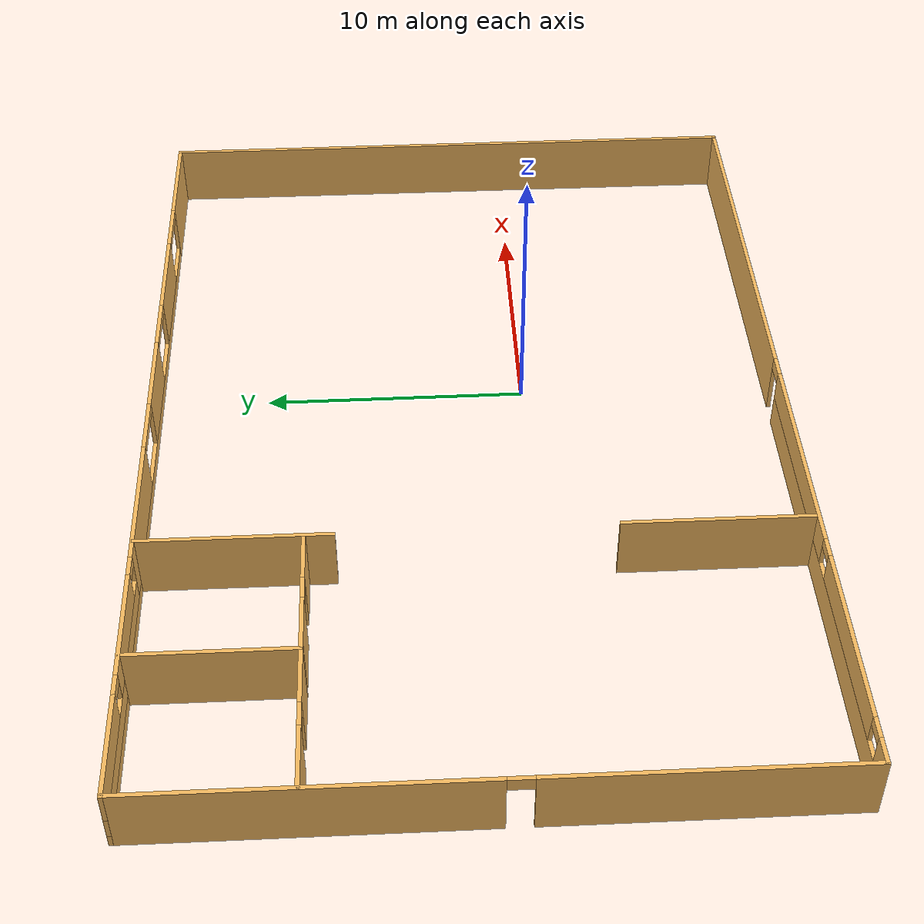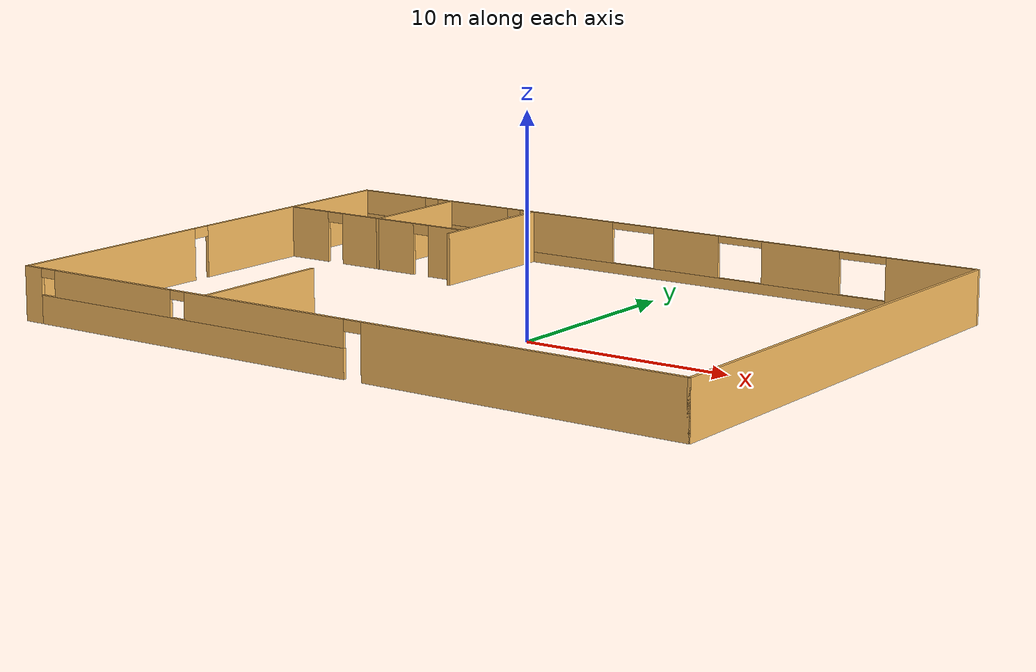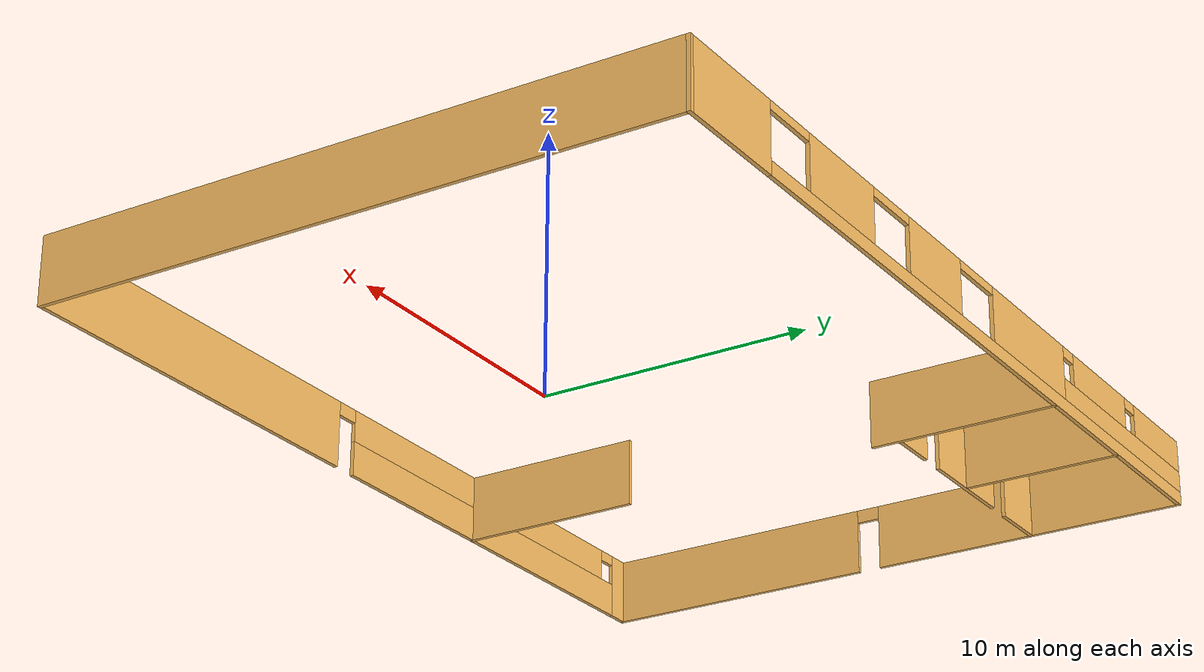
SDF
<?xml version='1.0'?>
<sdf version='1.6'>
  <model name='AdrianTemple'>
    <pose frame=''>-3.03305 2.27028 0 0 -0 0</pose>
    <link name='Wall_10'>
      <pose frame=''>-0 -11.925 0 0 -0 0</pose>
      <visual name='Wall_10_Visual_0'>
        <pose frame=''>-16.746 0 1.25 0 -0 0</pose>
        <geometry>
          <box>
            <size>1.00805 0.15 2.5</size>
          </box>
        </geometry>
        <material>
          <script>
            <uri>file://media/materials/scripts/gazebo.material</uri>
            <name>Gazebo/Grey</name>
          </script>
          <ambient>0.952941 0.721569 0.368627 1</ambient>
        </material>
        <meta>
          <layer>0</layer>
        </meta>
      </visual>
      <collision name='Wall_10_Collision_0'>
        <geometry>
          <box>
            <size>1.00805 0.15 2.5</size>
          </box>
        </geometry>
        <pose frame=''>-16.746 0 1.25 0 -0 0</pose>
      </collision>
      <visual name='Wall_10_Visual_1'>
        <pose frame=''>9.5202 0 1.25 0 -0 0</pose>
        <geometry>
          <box>
            <size>15.4596 0.15 2.5</size>
          </box>
        </geometry>
        <material>
          <script>
            <uri>file://media/materials/scripts/gazebo.material</uri>
            <name>Gazebo/Grey</name>
          </script>
          <ambient>0.952941 0.721569 0.368627 1</ambient>
        </material>
        <meta>
          <layer>0</layer>
        </meta>
      </visual>
      <collision name='Wall_10_Collision_1'>
        <geometry>
          <box>
            <size>15.4596 0.15 2.5</size>
          </box>
        </geometry>
        <pose frame=''>9.5202 0 1.25 0 -0 0</pose>
      </collision>
      <visual name='Wall_10_Visual_2'>
        <pose frame=''>-7.67577 0 0.65 0 -0 0</pose>
        <geometry>
          <box>
            <size>17.1324 0.15 1.3</size>
          </box>
        </geometry>
        <material>
          <script>
            <uri>file://media/materials/scripts/gazebo.material</uri>
            <name>Gazebo/Grey</name>
          </script>
          <ambient>0.952941 0.721569 0.368627 1</ambient>
        </material>
        <meta>
          <layer>0</layer>
        </meta>
      </visual>
      <collision name='Wall_10_Collision_2'>
        <geometry>
          <box>
            <size>17.1324 0.15 1.3</size>
          </box>
        </geometry>
        <pose frame=''>-7.67577 0 0.65 0 -0 0</pose>
      </collision>
      <visual name='Wall_10_Visual_3'>
        <pose frame=''>-12.0029 0 1.9 0 -0 0</pose>
        <geometry>
          <box>
            <size>6.87815 0.15 1.2</size>
          </box>
        </geometry>
        <material>
          <script>
            <uri>file://media/materials/scripts/gazebo.material</uri>
            <name>Gazebo/Grey</name>
          </script>
          <ambient>0.952941 0.721569 0.368627 1</ambient>
        </material>
        <meta>
          <layer>0</layer>
        </meta>
      </visual>
      <collision name='Wall_10_Collision_3'>
        <geometry>
          <box>
            <size>6.87815 0.15 1.2</size>
          </box>
        </geometry>
        <pose frame=''>-12.0029 0 1.9 0 -0 0</pose>
      </collision>
      <visual name='Wall_10_Visual_4'>
        <pose frame=''>-3.43669 0 1.9 0 -0 0</pose>
        <geometry>
          <box>
            <size>8.65421 0.15 1.2</size>
          </box>
        </geometry>
        <material>
          <script>
            <uri>file://media/materials/scripts/gazebo.material</uri>
            <name>Gazebo/Grey</name>
          </script>
          <ambient>0.952941 0.721569 0.368627 1</ambient>
        </material>
        <meta>
          <layer>0</layer>
        </meta>
      </visual>
      <collision name='Wall_10_Collision_4'>
        <geometry>
          <box>
            <size>8.65421 0.15 1.2</size>
          </box>
        </geometry>
        <pose frame=''>-3.43669 0 1.9 0 -0 0</pose>
      </collision>
      <visual name='Wall_10_Visual_5'>
        <pose frame=''>1.34041 0 2.25 0 -0 0</pose>
        <geometry>
          <box>
            <size>0.9 0.15 0.5</size>
          </box>
        </geometry>
        <material>
          <script>
            <uri>file://media/materials/scripts/gazebo.material</uri>
            <name>Gazebo/Grey</name>
          </script>
          <ambient>0.952941 0.721569 0.368627 1</ambient>
        </material>
        <meta>
          <layer>0</layer>
        </meta>
      </visual>
      <collision name='Wall_10_Collision_5'>
        <geometry>
          <box>
            <size>0.9 0.15 0.5</size>
          </box>
        </geometry>
        <pose frame=''>1.34041 0 2.25 0 -0 0</pose>
      </collision>
      <visual name='Wall_10_Visual_6'>
        <pose frame=''>-15.8419 0 2.3 0 -0 0</pose>
        <geometry>
          <box>
            <size>0.8 0.15 0.4</size>
          </box>
        </geometry>
        <material>
          <script>
            <uri>file://media/materials/scripts/gazebo.material</uri>
            <name>Gazebo/Grey</name>
          </script>
          <ambient>0.952941 0.721569 0.368627 1</ambient>
        </material>
        <meta>
          <layer>0</layer>
        </meta>
      </visual>
      <collision name='Wall_10_Collision_6'>
        <geometry>
          <box>
            <size>0.8 0.15 0.4</size>
          </box>
        </geometry>
        <pose frame=''>-15.8419 0 2.3 0 -0 0</pose>
      </collision>
      <visual name='Wall_10_Visual_7'>
        <pose frame=''>-8.1638 0 2.3 0 -0 0</pose>
        <geometry>
          <box>
            <size>0.8 0.15 0.4</size>
          </box>
        </geometry>
        <material>
          <script>
            <uri>file://media/materials/scripts/gazebo.material</uri>
            <name>Gazebo/Grey</name>
          </script>
          <ambient>0.952941 0.721569 0.368627 1</ambient>
        </material>
        <meta>
          <layer>0</layer>
        </meta>
      </visual>
      <collision name='Wall_10_Collision_7'>
        <geometry>
          <box>
            <size>0.8 0.15 0.4</size>
          </box>
        </geometry>
        <pose frame=''>-8.1638 0 2.3 0 -0 0</pose>
      </collision>
    </link>
    <link name='Wall_12'>
      <collision name='Wall_12_Collision'>
        <geometry>
          <box>
            <size>24 0.15 2.5</size>
          </box>
        </geometry>
        <pose frame=''>0 0 1.25 0 -0 0</pose>
      </collision>
      <visual name='Wall_12_Visual'>
        <pose frame=''>0 0 1.25 0 -0 0</pose>
        <geometry>
          <box>
            <size>24 0.15 2.5</size>
          </box>
        </geometry>
        <material>
          <script>
            <uri>file://media/materials/scripts/gazebo.material</uri>
            <name>Gazebo/Grey</name>
          </script>
          <ambient>0.952941 0.721569 0.368627 1</ambient>
        </material>
        <meta>
          <layer>0</layer>
        </meta>
      </visual>
      <pose frame=''>17.175 -0 0 0 -0 1.5708</pose>
    </link>
    <link name='Wall_16'>
      <pose frame=''>-0 11.925 0 0 -0 3.14159</pose>
      <visual name='Wall_16_Visual_0'>
        <pose frame=''>-14.9903 0 1.25 0 -0 0</pose>
        <geometry>
          <box>
            <size>4.51944 0.15 2.5</size>
          </box>
        </geometry>
        <material>
          <script>
            <uri>file://media/materials/scripts/gazebo.material</uri>
            <name>Gazebo/Grey</name>
          </script>
          <ambient>0.952941 0.721569 0.368627 1</ambient>
        </material>
        <meta>
          <layer>0</layer>
        </meta>
      </visual>
      <collision name='Wall_16_Collision_0'>
        <geometry>
          <box>
            <size>4.51944 0.15 2.5</size>
          </box>
        </geometry>
        <pose frame=''>-14.9903 0 1.25 0 -0 0</pose>
      </collision>
      <visual name='Wall_16_Visual_1'>
        <pose frame=''>2.25972 0 0.25 0 -0 0</pose>
        <geometry>
          <box>
            <size>29.9806 0.15 0.5</size>
          </box>
        </geometry>
        <material>
          <script>
            <uri>file://media/materials/scripts/gazebo.material</uri>
            <name>Gazebo/Grey</name>
          </script>
          <ambient>0.952941 0.721569 0.368627 1</ambient>
        </material>
        <meta>
          <layer>0</layer>
        </meta>
      </visual>
      <collision name='Wall_16_Collision_1'>
        <geometry>
          <box>
            <size>29.9806 0.15 0.5</size>
          </box>
        </geometry>
        <pose frame=''>2.25972 0 0.25 0 -0 0</pose>
      </collision>
      <visual name='Wall_16_Visual_2'>
        <pose frame=''>-8.3575 0 1.5 0 -0 0</pose>
        <geometry>
          <box>
            <size>4.06611 0.15 2</size>
          </box>
        </geometry>
        <material>
          <script>
            <uri>file://media/materials/scripts/gazebo.material</uri>
            <name>Gazebo/Grey</name>
          </script>
          <ambient>0.952941 0.721569 0.368627 1</ambient>
        </material>
        <meta>
          <layer>0</layer>
        </meta>
      </visual>
      <collision name='Wall_16_Collision_2'>
        <geometry>
          <box>
            <size>4.06611 0.15 2</size>
          </box>
        </geometry>
        <pose frame=''>-8.3575 0 1.5 0 -0 0</pose>
      </collision>
      <visual name='Wall_16_Visual_3'>
        <pose frame=''>-2.19098 0 1.5 0 -0 0</pose>
        <geometry>
          <box>
            <size>3.58692 0.15 2</size>
          </box>
        </geometry>
        <material>
          <script>
            <uri>file://media/materials/scripts/gazebo.material</uri>
            <name>Gazebo/Grey</name>
          </script>
          <ambient>0.952941 0.721569 0.368627 1</ambient>
        </material>
        <meta>
          <layer>0</layer>
        </meta>
      </visual>
      <collision name='Wall_16_Collision_3'>
        <geometry>
          <box>
            <size>3.58692 0.15 2</size>
          </box>
        </geometry>
        <pose frame=''>-2.19098 0 1.5 0 -0 0</pose>
      </collision>
      <visual name='Wall_16_Visual_4'>
        <pose frame=''>4.6747 0 1.5 0 -0 0</pose>
        <geometry>
          <box>
            <size>5.46443 0.15 2</size>
          </box>
        </geometry>
        <material>
          <script>
            <uri>file://media/materials/scripts/gazebo.material</uri>
            <name>Gazebo/Grey</name>
          </script>
          <ambient>0.952941 0.721569 0.368627 1</ambient>
        </material>
        <meta>
          <layer>0</layer>
        </meta>
      </visual>
      <collision name='Wall_16_Collision_4'>
        <geometry>
          <box>
            <size>5.46443 0.15 2</size>
          </box>
        </geometry>
        <pose frame=''>4.6747 0 1.5 0 -0 0</pose>
      </collision>
      <visual name='Wall_16_Visual_5'>
        <pose frame=''>12.3285 0 0.9 0 -0 0</pose>
        <geometry>
          <box>
            <size>9.84309 0.15 0.8</size>
          </box>
        </geometry>
        <material>
          <script>
            <uri>file://media/materials/scripts/gazebo.material</uri>
            <name>Gazebo/Grey</name>
          </script>
          <ambient>0.952941 0.721569 0.368627 1</ambient>
        </material>
        <meta>
          <layer>0</layer>
        </meta>
      </visual>
      <collision name='Wall_16_Collision_5'>
        <geometry>
          <box>
            <size>9.84309 0.15 0.8</size>
          </box>
        </geometry>
        <pose frame=''>12.3285 0 0.9 0 -0 0</pose>
      </collision>
      <visual name='Wall_16_Visual_6'>
        <pose frame=''>10.37 0 1.9 0 -0 0</pose>
        <geometry>
          <box>
            <size>4.3261 0.15 1.2</size>
          </box>
        </geometry>
        <material>
          <script>
            <uri>file://media/materials/scripts/gazebo.material</uri>
            <name>Gazebo/Grey</name>
          </script>
          <ambient>0.952941 0.721569 0.368627 1</ambient>
        </material>
        <meta>
          <layer>0</layer>
        </meta>
      </visual>
      <collision name='Wall_16_Collision_6'>
        <geometry>
          <box>
            <size>4.3261 0.15 1.2</size>
          </box>
        </geometry>
        <pose frame=''>10.37 0 1.9 0 -0 0</pose>
      </collision>
      <visual name='Wall_16_Visual_7'>
        <pose frame=''>15.2915 0 1.9 0 -0 0</pose>
        <geometry>
          <box>
            <size>3.91699 0.15 1.2</size>
          </box>
        </geometry>
        <material>
          <script>
            <uri>file://media/materials/scripts/gazebo.material</uri>
            <name>Gazebo/Grey</name>
          </script>
          <ambient>0.952941 0.721569 0.368627 1</ambient>
        </material>
        <meta>
          <layer>0</layer>
        </meta>
      </visual>
      <collision name='Wall_16_Collision_7'>
        <geometry>
          <box>
            <size>3.91699 0.15 1.2</size>
          </box>
        </geometry>
        <pose frame=''>15.2915 0 1.9 0 -0 0</pose>
      </collision>
      <visual name='Wall_16_Visual_8'>
        <pose frame=''>7.80691 0 2.3 0 -0 0</pose>
        <geometry>
          <box>
            <size>0.8 0.15 0.4</size>
          </box>
        </geometry>
        <material>
          <script>
            <uri>file://media/materials/scripts/gazebo.material</uri>
            <name>Gazebo/Grey</name>
          </script>
          <ambient>0.952941 0.721569 0.368627 1</ambient>
        </material>
        <meta>
          <layer>0</layer>
        </meta>
      </visual>
      <collision name='Wall_16_Collision_8'>
        <geometry>
          <box>
            <size>0.8 0.15 0.4</size>
          </box>
        </geometry>
        <pose frame=''>7.80691 0 2.3 0 -0 0</pose>
      </collision>
      <visual name='Wall_16_Visual_9'>
        <pose frame=''>12.933 0 2.3 0 -0 0</pose>
        <geometry>
          <box>
            <size>0.8 0.15 0.4</size>
          </box>
        </geometry>
        <material>
          <script>
            <uri>file://media/materials/scripts/gazebo.material</uri>
            <name>Gazebo/Grey</name>
          </script>
          <ambient>0.952941 0.721569 0.368627 1</ambient>
        </material>
        <meta>
          <layer>0</layer>
        </meta>
      </visual>
      <collision name='Wall_16_Collision_9'>
        <geometry>
          <box>
            <size>0.8 0.15 0.4</size>
          </box>
        </geometry>
        <pose frame=''>12.933 0 2.3 0 -0 0</pose>
      </collision>
      <visual name='Wall_16_Visual_10'>
        <pose frame=''>-11.5606 0 2.34 0 -0 0</pose>
        <geometry>
          <box>
            <size>2.34 0.15 0.32</size>
          </box>
        </geometry>
        <material>
          <script>
            <uri>file://media/materials/scripts/gazebo.material</uri>
            <name>Gazebo/Grey</name>
          </script>
          <ambient>0.952941 0.721569 0.368627 1</ambient>
        </material>
        <meta>
          <layer>0</layer>
        </meta>
      </visual>
      <collision name='Wall_16_Collision_10'>
        <geometry>
          <box>
            <size>2.34 0.15 0.32</size>
          </box>
        </geometry>
        <pose frame=''>-11.5606 0 2.34 0 -0 0</pose>
      </collision>
      <visual name='Wall_16_Visual_11'>
        <pose frame=''>-5.15444 0 2.34 0 -0 0</pose>
        <geometry>
          <box>
            <size>2.34 0.15 0.32</size>
          </box>
        </geometry>
        <material>
          <script>
            <uri>file://media/materials/scripts/gazebo.material</uri>
            <name>Gazebo/Grey</name>
          </script>
          <ambient>0.952941 0.721569 0.368627 1</ambient>
        </material>
        <meta>
          <layer>0</layer>
        </meta>
      </visual>
      <collision name='Wall_16_Collision_11'>
        <geometry>
          <box>
            <size>2.34 0.15 0.32</size>
          </box>
        </geometry>
        <pose frame=''>-5.15444 0 2.34 0 -0 0</pose>
      </collision>
      <visual name='Wall_16_Visual_12'>
        <pose frame=''>0.772481 0 2.34 0 -0 0</pose>
        <geometry>
          <box>
            <size>2.34 0.15 0.32</size>
          </box>
        </geometry>
        <material>
          <script>
            <uri>file://media/materials/scripts/gazebo.material</uri>
            <name>Gazebo/Grey</name>
          </script>
          <ambient>0.952941 0.721569 0.368627 1</ambient>
        </material>
        <meta>
          <layer>0</layer>
        </meta>
      </visual>
      <collision name='Wall_16_Collision_12'>
        <geometry>
          <box>
            <size>2.34 0.15 0.32</size>
          </box>
        </geometry>
        <pose frame=''>0.772481 0 2.34 0 -0 0</pose>
      </collision>
    </link>
    <link name='Wall_24'>
      <collision name='Wall_24_Collision'>
        <geometry>
          <box>
            <size>7 0.15 2.5</size>
          </box>
        </geometry>
        <pose frame=''>0 0 1.25 0 -0 0</pose>
      </collision>
      <visual name='Wall_24_Visual'>
        <pose frame=''>0 0 1.25 0 -0 0</pose>
        <geometry>
          <box>
            <size>7 0.15 2.5</size>
          </box>
        </geometry>
        <material>
          <script>
            <uri>file://media/materials/scripts/gazebo.material</uri>
            <name>Gazebo/Grey</name>
          </script>
          <ambient>0.952941 0.721569 0.368627 1</ambient>
        </material>
        <meta>
          <layer>0</layer>
        </meta>
      </visual>
      <pose frame=''>-6.65895 8.45051 0 0 -0 -1.5708</pose>
    </link>
    <link name='Wall_29'>
      <pose frame=''>-11.9867 6.0382 0 0 -0 3.14159</pose>
      <visual name='Wall_29_Visual_0'>
        <pose frame=''>-4.30458 0 1.25 0 -0 0</pose>
        <geometry>
          <box>
            <size>1.89084 0.15 2.5</size>
          </box>
        </geometry>
        <material>
          <script>
            <uri>file://media/materials/scripts/gazebo.material</uri>
            <name>Gazebo/Grey</name>
          </script>
          <ambient>0.952941 0.721569 0.368627 1</ambient>
        </material>
        <meta>
          <layer>0</layer>
        </meta>
      </visual>
      <collision name='Wall_29_Collision_0'>
        <geometry>
          <box>
            <size>1.89084 0.15 2.5</size>
          </box>
        </geometry>
        <pose frame=''>-4.30458 0 1.25 0 -0 0</pose>
      </collision>
      <visual name='Wall_29_Visual_1'>
        <pose frame=''>-0.260705 0 1.25 0 -0 0</pose>
        <geometry>
          <box>
            <size>4.39691 0.15 2.5</size>
          </box>
        </geometry>
        <material>
          <script>
            <uri>file://media/materials/scripts/gazebo.material</uri>
            <name>Gazebo/Grey</name>
          </script>
          <ambient>0.952941 0.721569 0.368627 1</ambient>
        </material>
        <meta>
          <layer>0</layer>
        </meta>
      </visual>
      <collision name='Wall_29_Collision_1'>
        <geometry>
          <box>
            <size>4.39691 0.15 2.5</size>
          </box>
        </geometry>
        <pose frame=''>-0.260705 0 1.25 0 -0 0</pose>
      </collision>
      <visual name='Wall_29_Visual_2'>
        <pose frame=''>4.04387 0 1.25 0 -0 0</pose>
        <geometry>
          <box>
            <size>2.41225 0.15 2.5</size>
          </box>
        </geometry>
        <material>
          <script>
            <uri>file://media/materials/scripts/gazebo.material</uri>
            <name>Gazebo/Grey</name>
          </script>
          <ambient>0.952941 0.721569 0.368627 1</ambient>
        </material>
        <meta>
          <layer>0</layer>
        </meta>
      </visual>
      <collision name='Wall_29_Collision_2'>
        <geometry>
          <box>
            <size>2.41225 0.15 2.5</size>
          </box>
        </geometry>
        <pose frame=''>4.04387 0 1.25 0 -0 0</pose>
      </collision>
      <visual name='Wall_29_Visual_3'>
        <pose frame=''>-2.90916 0 2.25 0 -0 0</pose>
        <geometry>
          <box>
            <size>0.9 0.15 0.5</size>
          </box>
        </geometry>
        <material>
          <script>
            <uri>file://media/materials/scripts/gazebo.material</uri>
            <name>Gazebo/Grey</name>
          </script>
          <ambient>0.952941 0.721569 0.368627 1</ambient>
        </material>
        <meta>
          <layer>0</layer>
        </meta>
      </visual>
      <collision name='Wall_29_Collision_3'>
        <geometry>
          <box>
            <size>0.9 0.15 0.5</size>
          </box>
        </geometry>
        <pose frame=''>-2.90916 0 2.25 0 -0 0</pose>
      </collision>
      <visual name='Wall_29_Visual_4'>
        <pose frame=''>2.38775 0 2.25 0 -0 0</pose>
        <geometry>
          <box>
            <size>0.9 0.15 0.5</size>
          </box>
        </geometry>
        <material>
          <script>
            <uri>file://media/materials/scripts/gazebo.material</uri>
            <name>Gazebo/Grey</name>
          </script>
          <ambient>0.952941 0.721569 0.368627 1</ambient>
        </material>
        <meta>
          <layer>0</layer>
        </meta>
      </visual>
      <collision name='Wall_29_Collision_4'>
        <geometry>
          <box>
            <size>0.9 0.15 0.5</size>
          </box>
        </geometry>
        <pose frame=''>2.38775 0 2.25 0 -0 0</pose>
      </collision>
    </link>
    <link name='Wall_31'>
      <pose frame=''>-17.175 -0 0 0 -0 -1.5708</pose>
      <visual name='Wall_31_Visual_0'>
        <pose frame=''>-5.86076 0 1.25 0 -0 0</pose>
        <geometry>
          <box>
            <size>12.2785 0.15 2.5</size>
          </box>
        </geometry>
        <material>
          <script>
            <uri>file://media/materials/scripts/gazebo.material</uri>
            <name>Gazebo/Grey</name>
          </script>
          <ambient>0.952941 0.721569 0.368627 1</ambient>
        </material>
        <meta>
          <layer>0</layer>
        </meta>
      </visual>
      <collision name='Wall_31_Collision_0'>
        <geometry>
          <box>
            <size>12.2785 0.15 2.5</size>
          </box>
        </geometry>
        <pose frame=''>-5.86076 0 1.25 0 -0 0</pose>
      </collision>
      <visual name='Wall_31_Visual_1'>
        <pose frame=''>6.58925 0 1.25 0 -0 0</pose>
        <geometry>
          <box>
            <size>10.8215 0.15 2.5</size>
          </box>
        </geometry>
        <material>
          <script>
            <uri>file://media/materials/scripts/gazebo.material</uri>
            <name>Gazebo/Grey</name>
          </script>
          <ambient>0.952941 0.721569 0.368627 1</ambient>
        </material>
        <meta>
          <layer>0</layer>
        </meta>
      </visual>
      <collision name='Wall_31_Collision_1'>
        <geometry>
          <box>
            <size>10.8215 0.15 2.5</size>
          </box>
        </geometry>
        <pose frame=''>6.58925 0 1.25 0 -0 0</pose>
      </collision>
      <visual name='Wall_31_Visual_2'>
        <pose frame=''>0.728491 0 2.25 0 -0 0</pose>
        <geometry>
          <box>
            <size>0.9 0.15 0.5</size>
          </box>
        </geometry>
        <material>
          <script>
            <uri>file://media/materials/scripts/gazebo.material</uri>
            <name>Gazebo/Grey</name>
          </script>
          <ambient>0.952941 0.721569 0.368627 1</ambient>
        </material>
        <meta>
          <layer>0</layer>
        </meta>
      </visual>
      <collision name='Wall_31_Collision_2'>
        <geometry>
          <box>
            <size>0.9 0.15 0.5</size>
          </box>
        </geometry>
        <pose frame=''>0.728491 0 2.25 0 -0 0</pose>
      </collision>
    </link>
    <link name='Wall_33'>
      <collision name='Wall_33_Collision'>
        <geometry>
          <box>
            <size>7 0.15 2.5</size>
          </box>
        </geometry>
        <pose frame=''>0 0 1.25 0 -0 0</pose>
      </collision>
      <visual name='Wall_33_Visual'>
        <pose frame=''>0 0 1.25 0 -0 0</pose>
        <geometry>
          <box>
            <size>7 0.15 2.5</size>
          </box>
        </geometry>
        <material>
          <script>
            <uri>file://media/materials/scripts/gazebo.material</uri>
            <name>Gazebo/Grey</name>
          </script>
          <ambient>0.952941 0.721569 0.368627 1</ambient>
        </material>
        <meta>
          <layer>0</layer>
        </meta>
      </visual>
      <pose frame=''>-6.63181 -8.44954 0 0 -0 1.5708</pose>
    </link>
    <link name='Wall_35'>
      <collision name='Wall_35_Collision'>
        <geometry>
          <box>
            <size>6 0.15 2.5</size>
          </box>
        </geometry>
        <pose frame=''>0 0 1.25 0 -0 0</pose>
      </collision>
      <visual name='Wall_35_Visual'>
        <pose frame=''>0 0 1.25 0 -0 0</pose>
        <geometry>
          <box>
            <size>6 0.15 2.5</size>
          </box>
        </geometry>
        <material>
          <script>
            <uri>file://media/materials/scripts/gazebo.material</uri>
            <name>Gazebo/Grey</name>
          </script>
          <ambient>0.952941 0.721569 0.368627 1</ambient>
        </material>
        <meta>
          <layer>0</layer>
        </meta>
      </visual>
      <pose frame=''>-11.7202 8.95509 0 0 -0 -1.5708</pose>
    </link>
    <static>1</static>
  </model>
</sdf>
